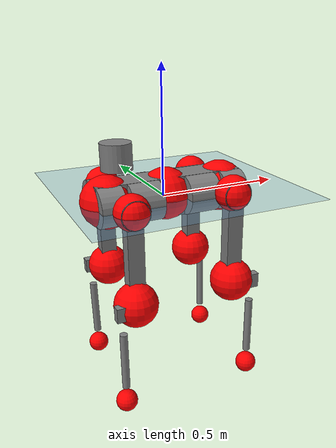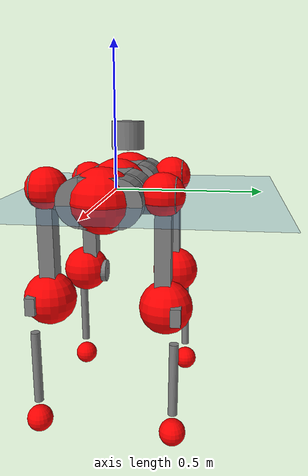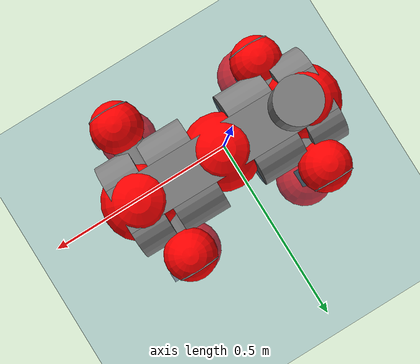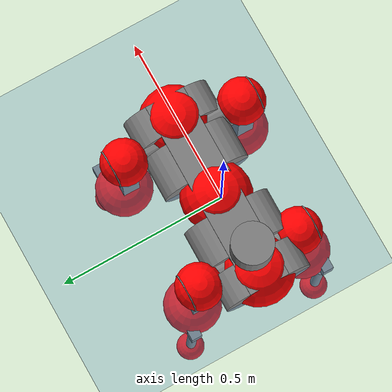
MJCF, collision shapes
<mujoco model="anymal_c">
  <compiler angle="radian" assetdir="assets" balanceinertia="true" inertiafromgeom="false"/>

  <option timestep="0.005" density="1.2" viscosity="2e-05"/>

  <size nkey="1"/>

  <visual>
    <quality shadowsize="8192"/>
    <map shadowclip="0.5"/>
  </visual>

  <default>
    <default class="/">
      <material specular="0" shininess="0.25"/>
      <geom contype="0" conaffinity="0" group="1" solref="-1000 -80"/>
      <site size="0.01 0.005 0.005" group="5"/>
      <general forcelimited="true" forcerange="-80 80" biastype="affine" gainprm="80" biasprm="0 -80 -2"/>
      <default class="anymal_c">
        <joint armature="0.01" damping="0.01" frictionloss="0.1"/>
        <default class="visual">
          <geom type="mesh" group="2"/>
          <default class="visual_zflip"/>
        </default>
        <default class="collision">
          <geom type="cylinder" group="3"/>
          <default class="foot">
            <geom size="0.03 0 0" type="sphere" condim="6" priority="1" friction="0.8 0.02 0.01" solimp="0.015 1 0.03"/>
          </default>
        </default>
      </default>
      <default class="reward_collision_sphere">
        <geom group="5" rgba="1 0 0 1"/>
      </default>
    </default>
  </default>

  <asset>
    <texture type="skybox" colorspace="auto" name="//unnamed_texture_0" builtin="gradient" rgb1="0.95 0.95 0.95" rgb2="0.95 0.95 0.95" width="100" height="600"/>
    <texture type="2d" colorspace="auto" name="texplane" builtin="checker" rgb1="0.345 0.575 0.748" rgb2="0.345 0.575 0.748" markrgb="1 1 1" width="512" height="512"/>
    <texture type="2d" colorspace="linear" name="base" file="base.png"/>
    <texture type="2d" colorspace="linear" name="top_shell" file="top_shell.png"/>
    <texture type="2d" colorspace="linear" name="bottom_shell" file="bottom_shell.png"/>
    <texture type="2d" colorspace="linear" name="remote" file="remote.png"/>
    <texture type="2d" colorspace="linear" name="hatch" file="hatch.png"/>
    <texture type="2d" colorspace="linear" name="handle" file="handle.png"/>
    <texture type="2d" colorspace="linear" name="face" file="face.png"/>
    <texture type="2d" colorspace="linear" name="battery" file="battery.png"/>
    <texture type="2d" colorspace="linear" name="lidar_cage" file="lidar_cage.png"/>
    <texture type="2d" colorspace="linear" name="depth_camera" file="depth_camera.png"/>
    <texture type="2d" colorspace="linear" name="wide_angle_camera" file="wide_angle_camera.png"/>
    <texture type="2d" colorspace="linear" name="lidar" file="lidar.png"/>
    <texture type="2d" colorspace="linear" name="drive" file="drive.png"/>
    <texture type="2d" colorspace="linear" name="hip_l" file="hip_l.png"/>
    <texture type="2d" colorspace="linear" name="shank_l" file="shank_l.png"/>
    <texture type="2d" colorspace="linear" name="foot" file="foot.png"/>
    <texture type="2d" colorspace="linear" name="thigh" file="thigh.png"/>
    <texture type="2d" colorspace="linear" name="shank_r" file="shank_r.png"/>
    <texture type="2d" colorspace="linear" name="hip_r" file="hip_r.png"/>
    <material name="MatPlane" class="/" texture="texplane" texuniform="true" texrepeat="2 2" specular="0.9" shininess="0.5"/>
    <material name="black_plastic" class="/" rgba="0.007 0.007 0.007 1"/>
    <material name="green" class="/" rgba="0.052 0.178 0.033 1"/>
    <material name="red" class="/" rgba="0.178 0.006 0.005 1"/>
    <material name="yellow" class="/" rgba="0.178 0.119 0.006 1"/>
    <material name="lwl" class="/" rgba="0.8 0.8 0.8 1"/>
    <material name="base" class="/" texture="base"/>
    <material name="top_shell" class="/" texture="top_shell"/>
    <material name="bottom_shell" class="/" texture="bottom_shell"/>
    <material name="hip_l" class="/" texture="hip_l"/>
    <material name="thigh" class="/" texture="thigh"/>
    <material name="shank_l" class="/" texture="shank_l"/>
    <material name="foot" class="/" texture="foot"/>
    <material name="hip_r" class="/" texture="hip_r"/>
    <material name="shank" class="/" texture="shank_r"/>
    <material name="hatch" class="/" texture="hatch"/>
    <material name="remote" class="/" texture="remote"/>
    <material name="handle" class="/" texture="handle"/>
    <material name="face" class="/" texture="face"/>
    <material name="depth_camera" class="/" texture="depth_camera"/>
    <material name="wide_angle_camera" class="/" texture="wide_angle_camera"/>
    <material name="battery" class="/" texture="battery"/>
    <material name="lidar_cage" class="/" texture="lidar_cage"/>
    <material name="lidar" class="/" texture="lidar"/>
    <material name="drive" class="/" texture="drive"/>
    <mesh name="base_0" class="/" file="base_0.obj"/>
    <mesh name="base_1" class="/" file="base_1.obj"/>
    <mesh name="base_2" class="/" file="base_2.obj"/>
    <mesh name="base_3" class="/" file="base_3.obj"/>
    <mesh name="base_4" class="/" file="base_4.obj"/>
    <mesh name="base_5" class="/" file="base_5.obj"/>
    <mesh name="top_shell" class="/" file="top_shell.obj"/>
    <mesh name="bottom_shell" class="/" file="bottom_shell.obj"/>
    <mesh name="remote" class="/" file="remote.obj"/>
    <mesh name="handle" class="/" file="handle.obj"/>
    <mesh name="face" class="/" file="face.obj"/>
    <mesh name="wide_angle_camera" class="/" file="wide_angle_camera.obj"/>
    <mesh name="depth_camera" class="/" file="depth_camera.obj"/>
    <mesh name="battery" class="/" file="battery.obj"/>
    <mesh name="lidar_cage" class="/" file="lidar_cage.obj"/>
    <mesh name="lidar" class="/" file="lidar.obj"/>
    <mesh name="drive" class="/" file="drive.obj"/>
    <mesh name="hip_l" class="/" file="hip_l.obj"/>
    <mesh name="thigh" class="/" file="thigh.obj"/>
    <mesh name="shank_l" class="/" file="shank_l.obj"/>
    <mesh name="foot" class="/" file="foot.obj"/>
    <mesh name="hip_r" class="/" file="hip_r.obj"/>
    <mesh name="hatch" class="/" file="hatch.obj"/>
    <mesh name="shank_r" class="/" file="shank_r.obj"/>
  </asset>

  <worldbody>
    <geom name="floor" class="/" size="100 100 0.125" type="plane" group="0" material="MatPlane"/>
    <light name="toplight_shadow" class="/" pos="0 0 5" dir="0.0990148 0.0990148 -0.990148" type="directional" ambient="0.04 0.04 0.04" diffuse="0.55 0.55 0.55" specular="0.12 0.12 0.12"/>
    <light name="toplight_fill" class="/" pos="0 0 5" dir="0.0990148 0.0990148 -0.990148" type="directional" castshadow="false" ambient="0.04 0.04 0.04" diffuse="0.3 0.3 0.3" specular="0.08 0.08 0.08"/>
    <body name="trunk" childclass="anymal_c" pos="0.0129199 0.00873429 0.00484306" quat="0.999987 -0.00142638 -0.00393861 -0.00298781">
      <inertial pos="0.0149437 0.000115279 0.0637635" quat="0.50473 0.494525 0.516029 0.484156" mass="11.6732" diaginertia="0.0291801 0.174231 0.635106"/>
      <joint name="//unnamed_joint_0" type="free" armature="0" damping="0" frictionloss="0"/>
      <geom name="//unnamed_geom_1" class="visual" material="green" mesh="base_0"/>
      <geom name="//unnamed_geom_2" class="visual" material="yellow" mesh="base_1"/>
      <geom name="//unnamed_geom_3" class="visual" material="red" mesh="base_2"/>
      <geom name="//unnamed_geom_4" class="visual" material="black_plastic" mesh="base_3"/>
      <geom name="//unnamed_geom_5" class="visual" material="lwl" mesh="base_4"/>
      <geom name="//unnamed_geom_6" class="visual" material="base" mesh="base_5"/>
      <geom name="trunk_1" class="collision" size="0.251024 0.0605919 0.0779039" type="box"/>
      <geom name="trunk_2" class="collision" size="0.0779039 0.0627559" pos="0.116721 0.0544594 0" quat="0.707107 0 0.707107 0"/>
      <geom name="trunk_3" class="collision" size="0.0779039 0.0627559" pos="-0.116721 0.0544594 0" quat="0.707107 0 0.707107 0"/>
      <geom name="trunk_4" class="collision" size="0.0779039 0.0627559" pos="0.116721 -0.0544594 0" quat="0.707107 0 0.707107 0"/>
      <geom name="trunk_5" class="collision" size="0.0779039 0.0627559" pos="-0.116721 -0.0544594 0" quat="0.707107 0 0.707107 0"/>
      <geom name="//unnamed_geom_12" class="visual" material="top_shell" mesh="top_shell"/>
      <geom name="//unnamed_geom_13" class="visual" material="bottom_shell" mesh="bottom_shell"/>
      <geom name="//unnamed_geom_14" class="visual" material="remote" mesh="remote"/>
      <geom name="//unnamed_geom_15" class="visual" material="handle" mesh="handle"/>
      <geom name="//unnamed_geom_16" class="visual" pos="0.222442 0 0" quat="1 0 0 0" material="face" mesh="face"/>
      <geom name="trunk_6" class="collision" size="0.0476079 0.0605919 0.0779039" pos="0.251957 0 0" type="box"/>
      <geom name="//unnamed_geom_18" class="collision" size="0.0779039 0.0476079" pos="0.251957 0.0544594 0" quat="0.707107 0 0.707107 0"/>
      <geom name="//unnamed_geom_19" class="collision" size="0.0779039 0.0476079" pos="0.251957 -0.0544594 0" quat="0.707107 0 0.707107 0"/>
      <geom name="//unnamed_geom_20" class="visual" pos="0.247776 0 -0.0431047" quat="0.965926 0 0.258819 0" material="depth_camera" mesh="depth_camera"/>
      <geom name="//unnamed_geom_21" class="visual" pos="0.275302 0 0.0191938" material="wide_angle_camera" mesh="wide_angle_camera"/>
      <geom name="//unnamed_geom_22" class="visual_zflip" pos="-0.222442 0 0" quat="0 0 0 1" material="face" mesh="face"/>
      <geom name="trunk_7" class="collision" size="0.0476079 0.0605919 0.0779039" pos="-0.251957 0 0" quat="0 0 0 1" type="box"/>
      <geom name="//unnamed_geom_24" class="collision" size="0.0779039 0.0476079" pos="-0.251957 -0.0544594 0" quat="0 -0.707107 0 0.707107"/>
      <geom name="//unnamed_geom_25" class="collision" size="0.0779039 0.0476079" pos="-0.251957 0.0544594 0" quat="0 -0.707107 0 0.707107"/>
      <geom name="//unnamed_geom_26" class="visual" pos="-0.247776 0 -0.0431047" quat="0 -0.258819 0 0.965926" material="depth_camera" mesh="depth_camera"/>
      <geom name="//unnamed_geom_27" class="visual_zflip" pos="-0.275302 0 0.0191938" quat="0 0 0 1" material="wide_angle_camera" mesh="wide_angle_camera"/>
      <geom name="//unnamed_geom_28" class="visual" material="battery" mesh="battery"/>
      <geom name="//unnamed_geom_29" class="visual" pos="0 0.0626831 0.0315807" quat="0.683013 -0.183013 0.183013 0.683013" material="depth_camera" mesh="depth_camera"/>
      <geom name="//unnamed_geom_30" class="visual" pos="0 -0.0626831 0.0315807" quat="0.683013 0.183013 0.183013 -0.683013" material="depth_camera" mesh="depth_camera"/>
      <geom name="//unnamed_geom_31" class="visual" pos="-0.195341 0 0.0942383" quat="1 0 0 0" material="lidar_cage" mesh="lidar_cage"/>
      <geom name="trunk_8" class="collision" size="0.0605919 0.0519359" pos="-0.195341 0 0.171167"/>
      <geom name="//unnamed_geom_33" class="visual" pos="-0.195341 9.48166e-05 0.182322" quat="0.707107 0 0 -0.707107" material="lidar" mesh="lidar"/>
      <geom name="//unnamed_geom_34" class="visual" pos="0.160941 0.0810903 -8.69684e-09" quat="0.258819 0.965926 0 0" material="drive" mesh="drive"/>
      <geom name="//unnamed_geom_35" class="visual" pos="0.160941 -0.0810903 8.69684e-09" quat="0.258819 -0.965926 0 0" material="drive" mesh="drive"/>
      <geom name="//unnamed_geom_36" class="visual" pos="-0.160941 0.0810903 8.69684e-09" quat="0 0 0.965926 -0.258819" material="drive" mesh="drive"/>
      <geom name="//unnamed_geom_37" class="visual" pos="-0.160941 -0.0810903 -8.69684e-09" quat="0 0 -0.965926 -0.258819" material="drive" mesh="drive"/>
      <geom name="//unnamed_geom_38" class="visual" pos="0.0622514 0 0.0935972" quat="1 0 0 0" material="hatch" mesh="hatch"/>
      <geom name="//unnamed_geom_39" class="reward_collision_sphere" size="0.103872"/>
      <geom name="//unnamed_geom_40" class="reward_collision_sphere" size="0.103872" pos="0.241493 0 0"/>
      <geom name="//unnamed_geom_41" class="reward_collision_sphere" size="0.103872" pos="-0.241493 0 0"/>
      <site name="imu" pos="0.137067 -0.015913 0.0756727" size="0.00865599"/>
      <camera name="track" pos="0 -1.55598 0" quat="0.707107 0.707107 0 0" mode="trackcom"/>
      <camera name="ego_camera" pos="0.241493 0 -0.0512861" quat="-0.5 -0.5 0.5 0.5"/>
      <body name="LF_HIP" pos="0.168576 0.0887672 -0.00493375" quat="0.260763 0.965383 0.0060869 -0.00074631">
        <inertial pos="0.044263 -0.00534595 -0.0039731" quat="-0.128871 0.709882 -0.13499 0.679145" mass="1.57151" diaginertia="0.00022842 0.00138944 0.00896611"/>
        <joint name="LF_HAA" pos="0 0 0" axis="0.999972 -0.000150237 0.00745118" stiffness="0.0203611" range="-0.720639 0.712274" armature="0.00447832" damping="0.0481515" frictionloss="0.0638999"/>
        <geom name="//unnamed_geom_42" class="visual" pos="0 -0.000511596 8.40292e-05" quat="0.258819 -0.965926 0 0" material="hip_l" mesh="hip_l"/>
        <geom name="//unnamed_geom_43" class="visual" pos="0.0321453 -0.0423077 -0.0281554" quat="0.183013 -0.683013 0.683013 0.183013" material="drive" mesh="drive"/>
        <geom name="//unnamed_geom_44" class="collision" size="0.0432799 0.0605919" pos="0.0321454 -0.00930463 -0.00885327" quat="-0.353553 -0.612372 0.612372 -0.353553"/>
        <body name="LF_THIGH" pos="0.0358228 -0.0578873 -0.0584559" quat="0.183058 -0.682636 0.68331 0.183261">
          <inertial pos="0.00367047 -0.000579708 -0.326664" quat="0.993164 -0.00485974 -0.0809035 0.0840025" mass="2.09753" diaginertia="0.00137512 0.00830761 0.015599"/>
          <joint name="LF_HFE" pos="0 0 0" axis="0.999578 0.00901142 -0.0276312" range="-2.93314 2.94676" armature="0.00463204" damping="0.0721359" frictionloss="0.0598552"/>
          <geom name="//unnamed_geom_45" class="visual" pos="-0.00480175 -7.56643e-06 0" quat="0.707107 0 0 -0.707107" material="thigh" mesh="thigh"/>
          <geom name="//unnamed_geom_46" class="collision" size="0.0562639 0.0346239" pos="0.021466 0 0" quat="0.5 0.5 -0.5 -0.5"/>
          <geom name="//unnamed_geom_47" class="collision" size="0.0324599 0.025968 0.122321" pos="0.0160995 0 -0.181186" quat="0.707107 0 0 -0.707107" type="box"/>
          <geom name="//unnamed_geom_48" class="visual" pos="0.053826 0 -0.365414" quat="1 0 0 0" material="drive" mesh="drive"/>
          <geom name="//unnamed_geom_49" class="collision" size="0.0432799 0.0605919" pos="0.0162605 0 -0.365414" quat="0.707107 0 0.707107 0"/>
          <geom name="//unnamed_geom_50" class="reward_collision_sphere" size="0.0692479" pos="0.0134163 0 0"/>
          <body name="LF_SHANK" pos="0.052179 -0.00254174 -0.364892" quat="0.999992 -0.00246317 0.00311344 0.000796796">
            <inertial pos="-0.00438217 -0.0541654 -0.0940223" quat="0.986629 -0.147802 -0.0317797 -0.0608886" mass="0.364766" diaginertia="0.000474073 0.00242091 0.00427056"/>
            <joint name="LF_KFE" pos="0 0 0" axis="0.99992 0.00762838 0.0100692" range="-3.13464 3.35483" armature="0.0119336" damping="0.00874451" frictionloss="0.0918706"/>
            <geom name="//unnamed_geom_51" class="visual" pos="-0.00156575 -0.00834863 0" quat="0.707107 0 0 -0.707107" material="shank_l" mesh="shank_l"/>
            <geom name="LF_kfe_act" class="collision" size="0.0519359 0.017312" pos="0.010733 0 0" quat="0.5 0.5 -0.5 -0.5"/>
            <geom name="//unnamed_geom_53" class="collision" size="0.049771 0.029214 0.0164464" pos="0.010733 -0.0447338 0" quat="0.5 0.5 -0.5 -0.5" type="box"/>
            <geom name="//unnamed_geom_54" class="visual" pos="0.00700367 -0.0711148 -0.433329" quat="0.382683 0 0 -0.92388" material="foot" mesh="foot"/>
            <geom name="LF_calf" class="collision" size="0.015148 0.122268" pos="0.00700329 -0.0684244 -0.216665" quat="0.707107 0 0 -0.707107"/>
            <geom name="LF_foot" class="foot" size="0.0233752" pos="0.00700329 -0.0684244 -0.404481" quat="0.707107 0 0 -0.707107"/>
            <geom name="//unnamed_geom_57" class="reward_collision_sphere" size="0.0865599" pos="-0.0268325 0 0"/>
            <geom name="//unnamed_geom_58" class="reward_collision_sphere" size="0.0432799" pos="0.00700329 -0.0684244 -0.404481"/>
            <site name="LF_foot" class="foot" pos="0.00700329 -0.0684244 -0.404481" quat="0.707107 0 0 -0.707107" size="0.00865599"/>
          </body>
        </body>
      </body>
      <body name="RF_HIP" pos="0.163923 -0.0917584 -0.00029239" quat="0.261122 -0.965304 -0.0007196 -0.00153613">
        <inertial pos="0.0204881 0.00868847 -0.0115833" quat="0.134191 0.680105 0.127808 0.709306" mass="1.30741" diaginertia="0.000236872 0.00128886 0.0111663"/>
        <joint name="RF_HAA" pos="0 0 0" axis="0.999976 -0.001647 -0.00670703" stiffness="0.0105225" range="-0.631022 0.740092" armature="0.0144903" damping="0.00945803" frictionloss="0.0297747"/>
        <geom name="//unnamed_geom_59" class="visual" pos="0 0.000511592 8.4029e-05" quat="0.258819 0.965926 0 0" material="hip_r" mesh="hip_r"/>
        <geom name="//unnamed_geom_60" class="visual" pos="0.0321454 0.0423077 -0.0281554" quat="0.183013 0.683013 0.683013 -0.183013" material="drive" mesh="drive"/>
        <geom name="//unnamed_geom_61" class="collision" size="0.0432799 0.0605919" pos="0.0321454 0.00930463 -0.00885327" quat="-0.353553 0.612372 0.612372 0.353553"/>
        <body name="RF_THIGH" pos="0.0325383 0.0597976 -0.065223" quat="0.182987 0.679224 0.687418 -0.180627">
          <inertial pos="0.0255648 0.0136808 -0.311593" quat="0.992678 2.05466e-05 -0.0837032 0.087087" mass="2.47029" diaginertia="0.00144327 0.00960629 0.0172581"/>
          <joint name="RF_HFE" pos="0 0 0" axis="0.999969 0.00758051 0.00193044" stiffness="0.00802645" range="-3.06775 3.23242" armature="0.00890894" damping="0.00497616" frictionloss="0.0636267"/>
          <geom name="//unnamed_geom_62" class="visual" pos="-0.00480175 -7.56643e-06 0" quat="0.707107 0 0 -0.707107" material="thigh" mesh="thigh"/>
          <geom name="//unnamed_geom_63" class="collision" size="0.0562639 0.0346239" pos="0.021466 0 0" quat="0.5 0.5 0.5 0.5"/>
          <geom name="//unnamed_geom_64" class="collision" size="0.0324599 0.025968 0.122321" pos="0.0160995 0 -0.181186" quat="0.707107 0 0 0.707107" type="box"/>
          <geom name="//unnamed_geom_65" class="visual" pos="0.053826 0 -0.365414" quat="1 0 0 0" material="drive" mesh="drive"/>
          <geom name="//unnamed_geom_66" class="collision" size="0.0432799 0.0605919" pos="0.0162605 0 -0.365414" quat="0.707107 0 0.707107 0"/>
          <geom name="//unnamed_geom_67" class="reward_collision_sphere" size="0.0692479" pos="0.0134163 0 0"/>
          <body name="RF_SHANK" pos="0.0454643 0.00216422 -0.364934" quat="1 -0.000568184 -0.000241888 -0.000625097">
            <inertial pos="-0.00357799 0.0464595 -0.100055" quat="0.99283 0.117523 0.00364904 0.0215114" mass="0.318391" diaginertia="0.000339254 0.00254617 0.00338481"/>
            <joint name="RF_KFE" pos="0 0 0" axis="0.998733 0.0365316 0.0346089" stiffness="0.0362154" range="-3.09263 3.15551" armature="0.00861463" damping="0" frictionloss="0.0737397"/>
            <geom name="//unnamed_geom_68" class="visual" pos="-0.00156574 0.00834862 0" quat="0.707107 0 0 0.707107" material="shank" mesh="shank_r"/>
            <geom name="RF_kfe_act" class="collision" size="0.0519359 0.017312" pos="0.010733 0 0" quat="0.5 0.5 0.5 0.5"/>
            <geom name="//unnamed_geom_70" class="collision" size="0.049771 0.029214 0.0164464" pos="0.010733 0.0447338 0" quat="0.5 0.5 0.5 0.5" type="box"/>
            <geom name="//unnamed_geom_71" class="visual" pos="0.00700291 0.0711148 -0.433329" quat="0.382683 0 0 0.92388" material="foot" mesh="foot"/>
            <geom name="RF_calf" class="collision" size="0.015148 0.122268" pos="0.00700329 0.0684244 -0.216665" quat="0.707107 0 0 0.707107"/>
            <geom name="RF_foot" class="foot" size="0.0303801" pos="0.00700329 0.0684244 -0.404481" quat="0.707107 0 0 0.707107"/>
            <geom name="//unnamed_geom_74" class="reward_collision_sphere" size="0.0865599" pos="-0.0268325 0 0"/>
            <geom name="//unnamed_geom_75" class="reward_collision_sphere" size="0.0432799" pos="0.00700329 0.0684244 -0.404481"/>
            <site name="RF_foot" class="foot" pos="0.00700329 0.0684244 -0.404481" quat="0.707107 0 0 0.707107" size="0.00865599"/>
          </body>
        </body>
      </body>
      <body name="LH_HIP" pos="-0.159093 0.0791628 -0.00720139" quat="0.00528251 -0.00302921 0.966957 -0.254868">
        <inertial pos="0.0175014 0.0142112 -0.0111621" quat="0.135523 0.678979 0.129099 0.709897" mass="1.75166" diaginertia="0.000261127 0.00124553 0.0118779"/>
        <joint name="LH_HAA" pos="0 0 0" axis="0.999921 0.0114333 0.00523858" range="-0.45222 0.698911" armature="0.00849151" damping="0.0143344" frictionloss="0.066026"/>
        <geom name="//unnamed_geom_76" class="visual" pos="0 0.000511592 8.4029e-05" quat="-0.258819 -0.965926 0 0" material="hip_r" mesh="hip_r"/>
        <geom name="//unnamed_geom_77" class="visual" pos="0.0321454 0.0423077 -0.0281554" quat="0.183013 0.683013 0.683013 -0.183013" material="drive" mesh="drive"/>
        <geom name="//unnamed_geom_78" class="collision" size="0.0432799 0.0605919" pos="0.0321454 0.00930463 -0.00885327" quat="-0.353553 0.612372 0.612372 0.353553"/>
        <body name="LH_THIGH" pos="0.0444449 0.0511944 -0.0628907" quat="0.187608 0.679586 0.684701 -0.184799">
          <inertial pos="0.0157675 0.00196521 -0.313086" quat="0.985331 -0.0272229 -0.127488 0.110126" mass="2.26692" diaginertia="0.00129366 0.00960979 0.013812"/>
          <joint name="LH_HFE" pos="0 0 0" axis="0.999896 -0.0121298 -0.00782335" stiffness="0.00294994" range="-3.1149 3.1169" armature="0.0118365" damping="0.0724034" frictionloss="0.105238"/>
          <geom name="//unnamed_geom_79" class="visual" pos="-0.00480175 -7.56643e-06 0" quat="0.707107 0 0 -0.707107" material="thigh" mesh="thigh"/>
          <geom name="//unnamed_geom_80" class="collision" size="0.0562639 0.0346239" pos="0.021466 0 0" quat="0.5 0.5 -0.5 -0.5"/>
          <geom name="//unnamed_geom_81" class="collision" size="0.0324599 0.025968 0.122321" pos="0.0160995 0 -0.181186" quat="0.707107 0 0 -0.707107" type="box"/>
          <geom name="//unnamed_geom_82" class="visual" pos="0.053826 0 -0.365414" quat="1 0 0 0" material="drive" mesh="drive"/>
          <geom name="//unnamed_geom_83" class="collision" size="0.0432799 0.0605919" pos="0.0162605 0 -0.365414" quat="0.707107 0 0.707107 0"/>
          <geom name="//unnamed_geom_84" class="reward_collision_sphere" size="0.0692479" pos="0.0134163 0 0"/>
          <body name="LH_SHANK" pos="0.0499785 -0.00159726 -0.371553" quat="1 2.12061e-05 -0.000239122 -0.000151233">
            <inertial pos="0.00357282 0.0466768 -0.11055" quat="0.992877 0.115812 0.00396676 0.0276864" mass="0.382853" diaginertia="0.000452025 0.00269185 0.00393112"/>
            <joint name="LH_KFE" pos="0 0 0" axis="0.999965 0.000328068 0.00835803" range="-3.0801 3.13765" armature="0.0115373" damping="0.0625265" frictionloss="0.0832094"/>
            <geom name="//unnamed_geom_85" class="visual" pos="-0.00156574 0.00834862 0" quat="-0.707107 0 0 -0.707107" material="shank" mesh="shank_r"/>
            <geom name="LH_kfe_act" class="collision" size="0.0519359 0.017312" pos="0.010733 0 0" quat="0.5 0.5 -0.5 -0.5"/>
            <geom name="//unnamed_geom_87" class="collision" size="0.049771 0.029214 0.0164464" pos="0.010733 0.0447338 0" quat="0.5 0.5 -0.5 -0.5" type="box"/>
            <geom name="//unnamed_geom_88" class="visual" pos="0.00700291 0.0711148 -0.433329" quat="-0.382683 0 0 -0.92388" material="foot" mesh="foot"/>
            <geom name="LH_calf" class="collision" size="0.015148 0.122268" pos="0.00700329 0.0684244 -0.216665" quat="0.707107 0 0 -0.707107"/>
            <geom name="LH_foot" class="foot" size="0.0175869" pos="0.00700329 0.0684244 -0.404481" quat="0.707107 0 0 -0.707107"/>
            <geom name="//unnamed_geom_91" class="reward_collision_sphere" size="0.0865599" pos="-0.0268325 0 0"/>
            <geom name="//unnamed_geom_92" class="reward_collision_sphere" size="0.0432799" pos="0.00700329 0.0684244 -0.404481"/>
            <site name="LH_foot" class="foot" pos="0.00700329 0.0684244 -0.404481" quat="0.707107 0 0 -0.707107" size="0.00865599"/>
          </body>
        </body>
      </body>
      <body name="RH_HIP" pos="-0.164126 -0.0684179 -0.00999977" quat="0.000573398 0.00183963 -0.964868 -0.262729">
        <inertial pos="0.0298809 -0.0219279 -0.0113583" quat="-0.0953228 0.743517 -0.110465 0.652605" mass="1.78999" diaginertia="0.000234529 0.0012499 0.0119693"/>
        <joint name="RH_HAA" pos="0 0 0" axis="0.999958 -0.00494521 0.0077697" range="-0.754571 0.520748" armature="0.00252791" damping="0" frictionloss="0.135019"/>
        <geom name="//unnamed_geom_93" class="visual" pos="0 -0.000511596 8.40292e-05" quat="-0.258819 0.965926 0 0" material="hip_l" mesh="hip_l"/>
        <geom name="//unnamed_geom_94" class="visual" pos="0.0321453 -0.0423077 -0.0281554" quat="-0.183013 0.683013 -0.683013 -0.183013" material="drive" mesh="drive"/>
        <geom name="//unnamed_geom_95" class="collision" size="0.0432799 0.0605919" pos="0.0321454 -0.00930463 -0.00885327" quat="0.353553 0.612372 -0.612372 0.353553"/>
        <body name="RH_THIGH" pos="0.0335721 -0.0546247 -0.0433098" quat="-0.18047 0.684093 -0.68275 -0.182481">
          <inertial pos="0.016508 0.00605527 -0.314581" quat="0.993136 -0.0115349 -0.0801795 0.0843702" mass="2.2642" diaginertia="0.0015158 0.00886884 0.0176104"/>
          <joint name="RH_HFE" pos="0 0 0" axis="0.999945 0.00100986 0.0104157" stiffness="0.042123" range="-2.9013 2.98918" armature="0.00595387" damping="0.0169224" frictionloss="0.100203"/>
          <geom name="//unnamed_geom_96" class="visual" pos="-0.00480175 -7.56643e-06 0" quat="0.707107 0 0 -0.707107" material="thigh" mesh="thigh"/>
          <geom name="//unnamed_geom_97" class="collision" size="0.0562639 0.0346239" pos="0.021466 0 0" quat="0.5 0.5 0.5 0.5"/>
          <geom name="//unnamed_geom_98" class="collision" size="0.0324599 0.025968 0.122321" pos="0.0160995 0 -0.181186" quat="0.707107 0 0 0.707107" type="box"/>
          <geom name="//unnamed_geom_99" class="visual" pos="0.053826 0 -0.365414" quat="1 0 0 0" material="drive" mesh="drive"/>
          <geom name="//unnamed_geom_100" class="collision" size="0.0432799 0.0605919" pos="0.0162605 0 -0.365414" quat="0.707107 0 0.707107 0"/>
          <geom name="//unnamed_geom_101" class="reward_collision_sphere" size="0.0692479" pos="0.0134163 0 0"/>
          <body name="RH_SHANK" pos="0.0688626 -0.00930722 -0.360091" quat="1 0.000919416 0.000121512 0.000143903">
            <inertial pos="-0.0113154 -0.046625 -0.110275" quat="0.991762 -0.126625 -0.0164349 -0.0101919" mass="0.368131" diaginertia="0.000482462 0.00341899 0.00405346"/>
            <joint name="RH_KFE" pos="0 0 0" axis="0.999947 -0.00867335 0.00559096" stiffness="0.00364747" range="-3.32198 2.84908" armature="0.0133903" damping="0.00145989" frictionloss="0.0721425"/>
            <geom name="//unnamed_geom_102" class="visual" pos="-0.00156575 -0.00834863 0" quat="0.707107 0 0 -0.707107" material="shank_l" mesh="shank_l"/>
            <geom name="RH_kfe_act" class="collision" size="0.0519359 0.017312" pos="0.010733 0 0" quat="0.5 0.5 0.5 0.5"/>
            <geom name="//unnamed_geom_104" class="collision" size="0.049771 0.029214 0.0164464" pos="0.010733 -0.0447338 0" quat="0.5 0.5 0.5 0.5" type="box"/>
            <geom name="//unnamed_geom_105" class="visual" pos="0.00700367 -0.0711148 -0.433329" quat="0.382683 0 0 -0.92388" material="foot" mesh="foot"/>
            <geom name="RH_calf" class="collision" size="0.015148 0.122268" pos="0.00700329 -0.0684244 -0.216665" quat="0.707107 0 0 0.707107"/>
            <geom name="RH_foot" class="foot" size="0.0293209" pos="0.00700329 -0.0684244 -0.404481" quat="0.707107 0 0 0.707107"/>
            <geom name="//unnamed_geom_108" class="reward_collision_sphere" size="0.0865599" pos="-0.0268325 0 0"/>
            <geom name="//unnamed_geom_109" class="reward_collision_sphere" size="0.0432799" pos="0.00700329 -0.0684244 -0.404481"/>
            <site name="RH_foot" class="foot" pos="0.00700329 -0.0684244 -0.404481" quat="0.707107 0 0 0.707107" size="0.00865599"/>
          </body>
        </body>
      </body>
    </body>
  </worldbody>

  <contact>
    <pair class="/" geom1="floor" geom2="LF_foot" name="//unnamed_contact_0"/>
    <pair class="/" geom1="floor" geom2="RF_foot" name="//unnamed_contact_1"/>
    <pair class="/" geom1="floor" geom2="LH_foot" name="//unnamed_contact_2"/>
    <pair class="/" geom1="floor" geom2="RH_foot" name="//unnamed_contact_3"/>
  </contact>

  <actuator>
    <general name="LF_HAA" class="/" joint="LF_HAA" forcerange="-69.7149 69.7149" gainprm="66.5206" biasprm="0 -66.5206 -1.81687"/>
    <general name="LF_HFE" class="/" joint="LF_HFE" forcerange="-86.155 86.155" gainprm="66.5206" biasprm="0 -66.5206 -1.81687"/>
    <general name="LF_KFE" class="/" joint="LF_KFE" forcerange="-73.3623 73.3623" gainprm="66.5206" biasprm="0 -66.5206 -1.81687"/>
    <general name="RF_HAA" class="/" joint="RF_HAA" forcerange="-33.0337 33.0337" gainprm="66.5206" biasprm="0 -66.5206 -1.81687"/>
    <general name="RF_HFE" class="/" joint="RF_HFE" forcerange="-70.3148 70.3148" gainprm="66.5206" biasprm="0 -66.5206 -1.81687"/>
    <general name="RF_KFE" class="/" joint="RF_KFE" forcerange="-93.5647 93.5647" gainprm="66.5206" biasprm="0 -66.5206 -1.81687"/>
    <general name="LH_HAA" class="/" joint="LH_HAA" forcerange="-71.6508 71.6508" gainprm="66.5206" biasprm="0 -66.5206 -1.81687"/>
    <general name="LH_HFE" class="/" joint="LH_HFE" forcerange="-71.9335 71.9335" gainprm="66.5206" biasprm="0 -66.5206 -1.81687"/>
    <general name="LH_KFE" class="/" joint="LH_KFE" forcerange="-70.2875 70.2875" gainprm="66.5206" biasprm="0 -66.5206 -1.81687"/>
    <general name="RH_HAA" class="/" joint="RH_HAA" forcerange="-66.9253 66.9253" gainprm="66.5206" biasprm="0 -66.5206 -1.81687"/>
    <general name="RH_HFE" class="/" joint="RH_HFE" forcerange="-79.3339 79.3339" gainprm="66.5206" biasprm="0 -66.5206 -1.81687"/>
    <general name="RH_KFE" class="/" joint="RH_KFE" forcerange="-38.2868 38.2868" gainprm="66.5206" biasprm="0 -66.5206 -1.81687"/>
  </actuator>

  <sensor>
    <gyro site="imu" name="imu_angular_velocity"/>
    <velocimeter site="imu" name="imu_linear_velocity"/>
    <framelinvel objtype="site" objname="LF_foot" name="LF_foot_global_linear_velocity"/>
    <framelinvel objtype="site" objname="RF_foot" name="RF_foot_global_linear_velocity"/>
    <framelinvel objtype="site" objname="LH_foot" name="LH_foot_global_linear_velocity"/>
    <framelinvel objtype="site" objname="RH_foot" name="RH_foot_global_linear_velocity"/>
  </sensor>

  <keyframe>
    <key name="home" qpos="0 0 0.55 1 0 0 0 0 0.4 -0.8 0 -0.4 0.8 0 -0.4 0.8 0 0.4 -0.8"/>
  </keyframe>
</mujoco>
